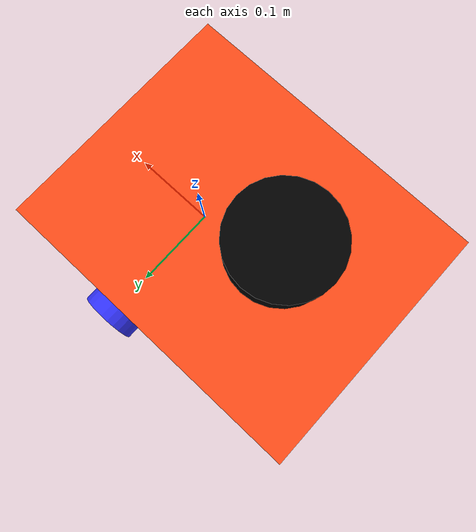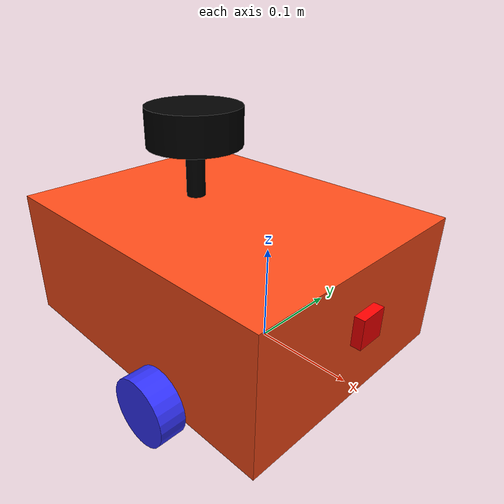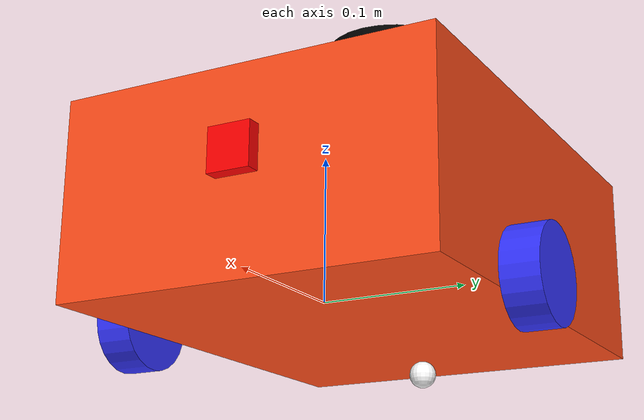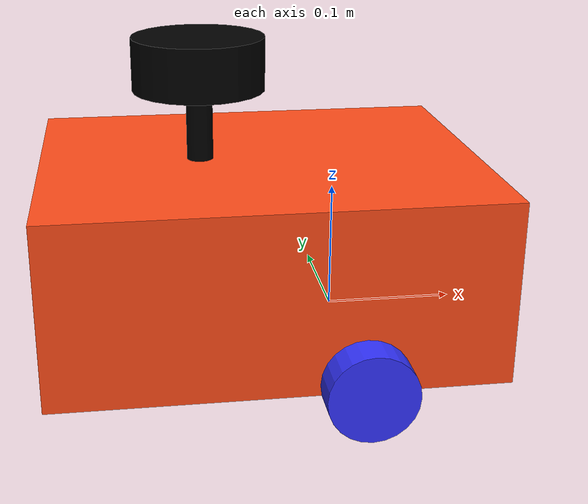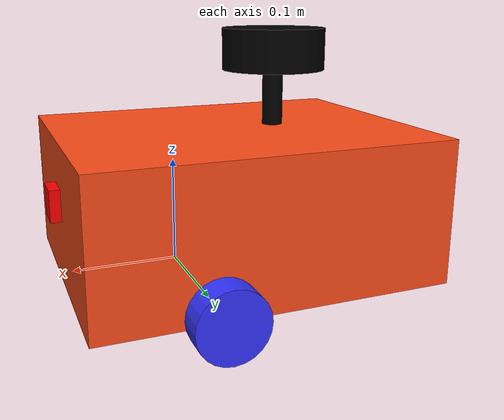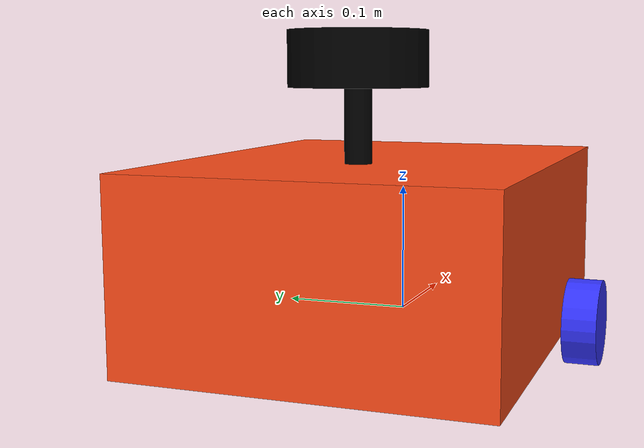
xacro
<?xml version="1.0"?>
<robot xmlns:xacro="http://www.ros.org/wiki/xacro"  name="robot">

    <xacro:include filename="robot_core.xacro"/>
    <xacro:include filename="robot_simulation.xacro"/>
    <xacro:include filename="sensors/lidar.xacro"/>
    <xacro:include filename="sensors/depth_camera.xacro"/>

</robot>

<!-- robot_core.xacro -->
<robot xmlns:xacro="http://www.ros.org/wiki/xacro" >

    <xacro:include filename="inertial_macros.xacro"/>

    <xacro:property name="chassis_length"        value="0.335"/>
    <xacro:property name="chassis_width"         value="0.265"/>
    <xacro:property name="chassis_height"        value="0.138"/>
    <xacro:property name="chassis_mass"          value="1.0"/>
    <xacro:property name="wheel_radius"          value="0.033"/>
    <xacro:property name="wheel_thickness"       value="0.026"/>
    <xacro:property name="wheel_mass"            value="0.05"/>
    <xacro:property name="wheel_offset_x"        value="0.226"/>
    <xacro:property name="wheel_offset_y"        value="0.1485"/>
    <xacro:property name="wheel_offset_z"        value="0.01"/>
    <xacro:property name="caster_wheel_radius"   value="0.01"/>
    <xacro:property name="caster_wheel_mass"     value="0.01"/>
    <xacro:property name="caster_wheel_offset_x" value="0.075"/>
    <xacro:property name="caster_wheel_offset_z" value="${wheel_offset_z - wheel_radius + caster_wheel_radius}"/>

    <material name="white">
        <color rgba="1 1 1 1" />
    </material>

    <material name="orange">
        <color rgba="1 0.3 0.1 1"/>
    </material>

    <material name="blue">
        <color rgba="0.2 0.2 1 1"/>
    </material>

    <material name="black">
        <color rgba="0 0 0 1"/>
    </material>

    <material name="red">
        <color rgba="1 0 0 1"/>
    </material>

    <!-- BASE LINK -->

    <link name="base_link">

    </link>

    <!-- BASE_FOOTPRINT LINK -->

    <joint name="base_footprint_joint" type="fixed">
        <parent link="base_link"/>
        <child link="base_footprint"/>
        <origin xyz="0 0 0" rpy="0 0 0"/>
    </joint>

    <link name="base_footprint">
    </link>

    <!-- CHASSIS LINK -->

    <joint name="chassis_joint" type="fixed">
        <parent link="base_link"/>
        <child link="chassis"/>
        <origin xyz="${-wheel_offset_x} 0 ${-wheel_offset_z}"/>
    </joint>

    <link name="chassis">
        <visual>
            <origin xyz="${chassis_length/2} 0 ${chassis_height/2}"/>
            <geometry>
                <box size="${chassis_length} ${chassis_width} ${chassis_height}"/>
            </geometry>
            <material name="orange"/>
        </visual>
        <collision>
            <origin xyz="${chassis_length/2} 0 ${chassis_height/2}"/>
            <geometry>
                <box size="${chassis_length} ${chassis_width} ${chassis_height}"/>
            </geometry>
        </collision>
        <xacro:inertial_box mass="0.5" x="${chassis_length}" y="${chassis_width}" z="${chassis_height}">
            <origin xyz="${chassis_length/2} 0 ${chassis_height/2}" rpy="0 0 0"/>
        </xacro:inertial_box>
    </link>

    <gazebo reference="chassis">
        <material>Gazebo/White</material>
    </gazebo>

    <!-- LEFT WHEEL LINK -->

    <joint name="left_wheel_joint" type="continuous">
        <parent link="base_link"/>
        <child link="left_wheel"/>
        <origin xyz="0 ${wheel_offset_y} 0" rpy="-${pi/2} 0 0" />
        <axis xyz="0 0 1"/>
    </joint>

    <link name="left_wheel">
        <visual>
            <geometry>
                <cylinder radius="${wheel_radius}" length="${wheel_thickness}"/>
            </geometry>
            <material name="blue"/>
        </visual>
        <collision>
            <geometry>
                <sphere radius="${wheel_radius}"/>
            </geometry>
        </collision>
        <xacro:inertial_cylinder mass="${wheel_mass}" length="${wheel_thickness}" radius="${wheel_radius}">
            <origin xyz="0 0 0" rpy="0 0 0"/>
        </xacro:inertial_cylinder>
    </link>

    <gazebo reference="left_wheel">
        <material>Gazebo/Blue</material>
    </gazebo>

    <!-- RIGHT WHEEL LINK -->

    <joint name="right_wheel_joint" type="continuous">
        <parent link="base_link"/>
        <child link="right_wheel"/>
        <origin xyz="0 ${-wheel_offset_y} 0" rpy="${pi/2} 0 0" />
        <axis xyz="0 0 -1"/>
    </joint>

    <link name="right_wheel">
        <visual>
            <geometry>
                <cylinder radius="${wheel_radius}" length="${wheel_thickness}"/>
            </geometry>
            <material name="blue"/>
        </visual>
        <collision>
            <geometry>
                <sphere radius="${wheel_radius}"/>
            </geometry>
        </collision>
        <xacro:inertial_cylinder mass="${wheel_mass}" length="${wheel_thickness}" radius="${wheel_radius}">
            <origin xyz="0 0 0" rpy="0 0 0"/>
        </xacro:inertial_cylinder>
    </link>

    <gazebo reference="right_wheel">
        <material>Gazebo/Blue</material>
    </gazebo>

    <!-- CASTER WHEEL LINK -->

    <joint name="caster_wheel_joint" type="fixed">
        <parent link="chassis"/>
        <child link="caster_wheel"/>
        <origin xyz="${caster_wheel_offset_x} 0 ${caster_wheel_offset_z}"/>
    </joint>

    <link name="caster_wheel">
        <visual>
            <geometry>
                <sphere radius="${caster_wheel_radius}"/>
            </geometry>
            <material name="white"/>
        </visual>
        <collision>
            <geometry>
                <sphere radius="${caster_wheel_radius}"/>
            </geometry>
        </collision>
        <xacro:inertial_sphere mass="${caster_wheel_mass}" radius="${caster_wheel_radius}">
            <origin xyz="0 0 0" rpy="0 0 0"/>
        </xacro:inertial_sphere>
    </link>

    <gazebo reference="caster_wheel">
        <material>Gazebo/White</material>
        <mu1 value="0.001"/>
        <mu2 value="0.001"/>
    </gazebo>

</robot>

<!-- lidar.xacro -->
<robot xmlns:xacro="http://www.ros.org/wiki/xacro" >

    <joint name="laser_joint" type="fixed">
        <parent link="chassis"/>
        <child link="laser_frame"/>
        <origin xyz="0.122 0 0.212" rpy="0 0 0"/> <!-- Value from Guide: 0.1 0 0.175 -->
    </joint>

    <link name="laser_frame">
        <visual>
            <geometry>
                <cylinder radius="0.05" length="0.04"/>
            </geometry>
            <material name="black"/>
        </visual>
        <visual>
            <origin xyz="0 0 -0.05"/>
            <geometry>
                <cylinder radius="0.01" length="0.1"/>
            </geometry>
            <material name="black"/>
        </visual>
        <collision>
            <geometry>
                <cylinder radius="0.05" length="0.04"/>
            </geometry>
        </collision>
        <xacro:inertial_cylinder mass="0.1" length="0.04" radius="0.05">
            <origin xyz="0 0 0" rpy="0 0 0"/>
        </xacro:inertial_cylinder>
    </link>

    <gazebo reference="laser_frame">
        <material>Gazebo/Red</material>

        <sensor name="laser" type="ray">
            <pose> 0 0 0 0 0 0 </pose>
            <visualize>true</visualize>
            <update_rate>30</update_rate>
            <ray>
                <scan>
                    <horizontal>
                        <samples>400</samples>
                        <min_angle>-3.14</min_angle>
                        <max_angle>3.14</max_angle>
                    </horizontal>
                </scan>
                <range>
                    <min>0.2</min>
                    <max>16.0</max>
                    <resolution>0.02</resolution>
                </range>
                <noise>
                    <type>gaussian</type>
                    <mean>0.0</mean>
                    <stddev>0.01</stddev>
                </noise>
            </ray>
            <plugin name="laser_controller" filename="libgazebo_ros_laser.so">
                <topicName>scan</topicName>
                <frameName>laser_frame</frameName>
                <outputType>sensor_msgs/LaserScan</outputType>
            </plugin>
        </sensor>
    </gazebo>

</robot>

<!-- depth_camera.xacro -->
<robot xmlns:xacro="http://www.ros.org/wiki/xacro" >

    <joint name="camera_joint" type="fixed">
        <parent link="chassis"/>
        <child link="camera_link"/>
        <origin xyz="0.34 0 0.08" rpy="0 0 0"/>
    </joint>

    <link name="camera_link">
        <visual>
            <geometry>
                <box size="0.010 0.03 0.03"/>
            </geometry>
            <material name="red"/>
        </visual>
    </link>

    <joint name="camera_optical_joint" type="fixed">
        <parent link="camera_link"/>
        <child link="camera_link_optical"/>
        <origin xyz="0 0 0" rpy="${-pi/2} 0 ${-pi/2}"/>
    </joint>

    <link name="camera_link_optical"></link>

    <gazebo reference="camera_link">
        <material>Gazebo/Red</material>

        <sensor name="camera" type="depth">
            <pose> 0 0 0 0 0 0 </pose>
            <visualize>true</visualize>
            <update_rate>10</update_rate>
            <camera>
                <horizontal_fov>1.089</horizontal_fov>
                <image>
                    <format>B8G8R8</format>
                    <width>640</width>
                    <height>480</height>
                </image>
                <clip>
                    <near>0.05</near>
                    <far>8.0</far>
                </clip>
            </camera>
            <plugin name="camera_controller" filename="libgazebo_ros_camera.so">
                <frameName>camera_link_optical</frameName>
                <minDepth>0.1</minDepth>
                <maxDepth>100.0</maxDepth>
            </plugin>
        </sensor>
    </gazebo>

</robot>
